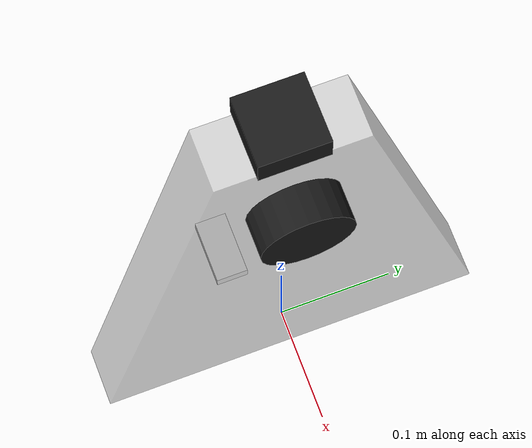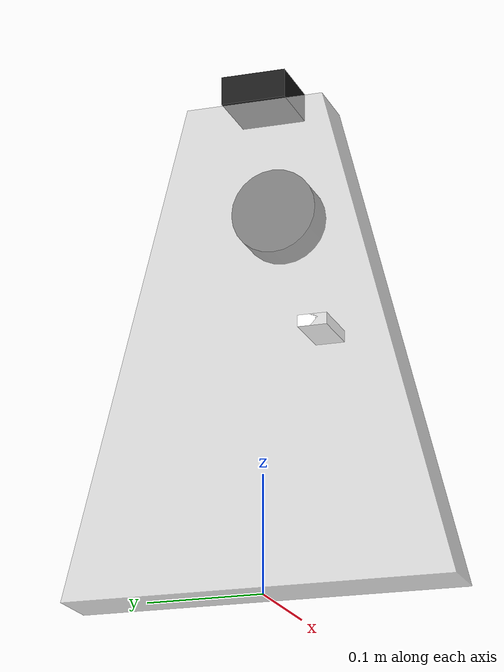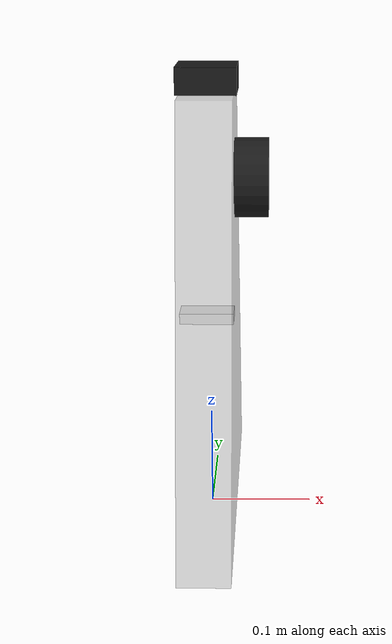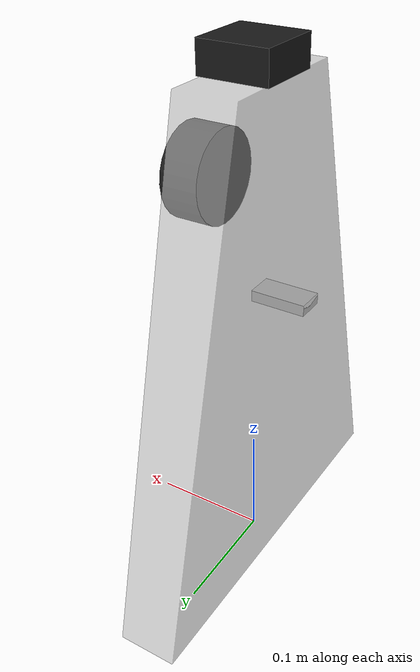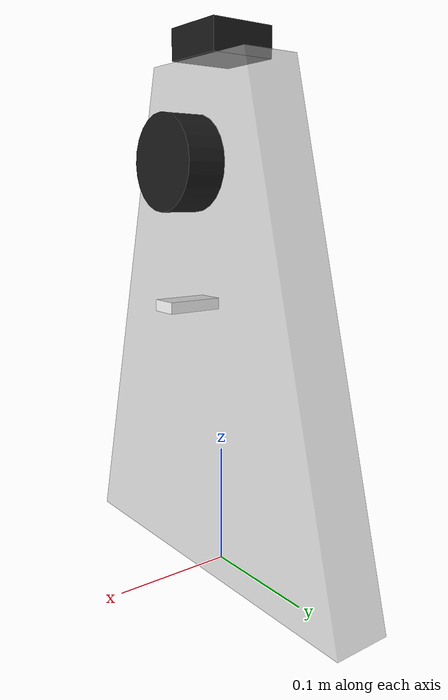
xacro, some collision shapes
<?xml version="1.0"?>
<robot xmlns:xacro="http://www.ros.org/wiki/xacro" name="grunt_mast">

  <xacro:arg name="prefix" default=""/>

  <!-- Materials -->
  <material name="$(arg prefix)mast_grey">
    <color rgba="0.75 0.75 0.75 0.6"/>
  </material>
  <material name="$(arg prefix)black">
    <color rgba="0.1 0.1 0.1 1.0"/>
  </material>
  <material name="$(arg prefix)white">
    <color rgba="0.95 0.95 0.95 1.0"/>
  </material>

  <!-- ============ LINKS ============ -->

  <!-- Mast structure: trapezoid prism -->
  <link name="$(arg prefix)base_link">
    <inertial>
      <mass value="0.8"/>
      <origin xyz="0 0 0.21" rpy="0 0 0"/>
      <inertia ixx="0.012" ixy="0" ixz="0"
               iyy="0.012" iyz="0"
               izz="0.001"/>
    </inertial>
    <visual>
      <origin xyz="0 0 0" rpy="0 0 0"/>
      <geometry>
        <mesh filename="package://grunt_description/meshes/mast_trapezoid.stl"/>
      </geometry>
      <material name="$(arg prefix)mast_grey"/>
    </visual>
    <collision>
      <origin xyz="0 0 0.21" rpy="0 0 0"/>
      <geometry>
        <box size="0.05 0.226 0.42"/>
      </geometry>
    </collision>
  </link>

  <!-- GPS antenna: 56mm x 56mm x 25mm black block, centered on mast top -->
  <link name="$(arg prefix)gps_link">
    <inertial>
      <mass value="0.05"/>
      <origin xyz="0 0 0.0125"/>
      <inertia ixx="1e-5" ixy="0" ixz="0"
               iyy="1e-5" iyz="0"
               izz="1e-5"/>
    </inertial>
    <visual>
      <origin xyz="0 0 0.0125" rpy="0 0 0"/>
      <geometry>
        <box size="0.056 0.056 0.025"/>
      </geometry>
      <material name="$(arg prefix)black"/>
    </visual>
    <collision>
      <origin xyz="0 0 0.0125" rpy="0 0 0"/>
      <geometry>
        <box size="0.056 0.056 0.025"/>
      </geometry>
    </collision>
  </link>

  <!-- BNO055 IMU: 50mm x 25mm x 10mm white PCB -->
  <link name="$(arg prefix)imu_link">
    <inertial>
      <mass value="0.01"/>
      <origin xyz="0 0 0"/>
      <inertia ixx="1e-6" ixy="0" ixz="0"
               iyy="1e-6" iyz="0"
               izz="1e-6"/>
    </inertial>
    <visual>
      <origin xyz="0 0 0" rpy="0 0 0"/>
      <geometry>
        <box size="0.050 0.025 0.010"/>
      </geometry>
      <material name="$(arg prefix)white"/>
    </visual>
    <collision>
      <origin xyz="0 0 0" rpy="0 0 0"/>
      <geometry>
        <box size="0.050 0.025 0.010"/>
      </geometry>
    </collision>
  </link>

  <link name="$(arg prefix)l2">
    <inertial>
      <mass value="0.195"/>
      <origin xyz="0 0 0.02"/>
      <inertia ixx="1e-4" ixy="0" ixz="0"
               iyy="1e-4" iyz="0"
               izz="1e-4"/>
    </inertial>
    <visual>
      <origin xyz="0 0 0" rpy="0 0 0"/>
      <geometry>
        <mesh filename="package://l2lidar_node/meshes/l2_lidar.stl"/>
      </geometry>
      <material name="$(arg prefix)black"/>
    </visual>
    <collision>
      <origin xyz="0 0 0.016" rpy="0 0 0"/>
      <geometry>
        <cylinder radius="0.0375" length="0.032"/>
      </geometry>
    </collision>
  </link>

  <!-- ============ JOINTS ============ -->
  <!-- All sensor positions relative to mast base_link origin (center of mast bottom) -->

  <!-- GPS antenna: centered on mast top surface -->
  <joint name="$(arg prefix)gps_joint" type="fixed">
    <origin xyz="0 0 0.42" rpy="0 0 0"/>
    <parent link="$(arg prefix)base_link"/>
    <child link="$(arg prefix)gps_link"/>
  </joint>

  <!-- BNO055 IMU: 22cm above mast base, 5cm to the right (-Y) of center -->
  <joint name="$(arg prefix)imu_joint" type="fixed">
    <origin xyz="0 -0.05 0.22" rpy="0 0 0"/>
    <parent link="$(arg prefix)base_link"/>
    <child link="$(arg prefix)imu_link"/>
  </joint>

  <joint name="$(arg prefix)l2_joint" type="fixed">
    <origin xyz="0.025 0 0.34" rpy="${pi} ${-pi/2} 0"/>
    <parent link="$(arg prefix)base_link"/>
    <child link="$(arg prefix)l2"/>
  </joint>

</robot>
